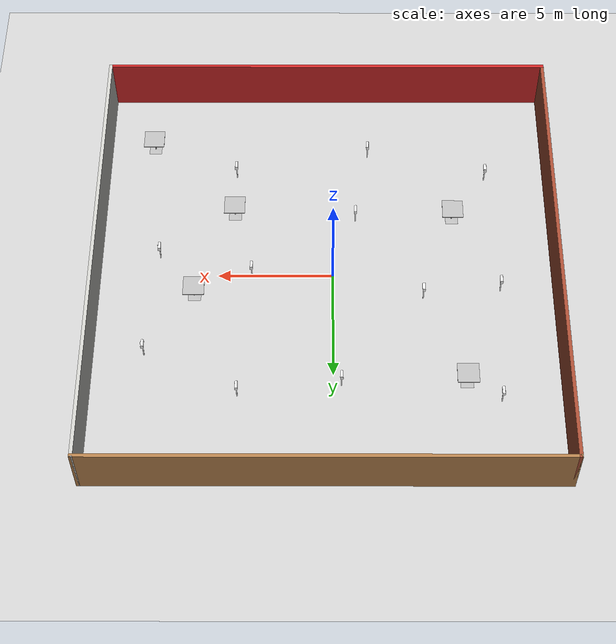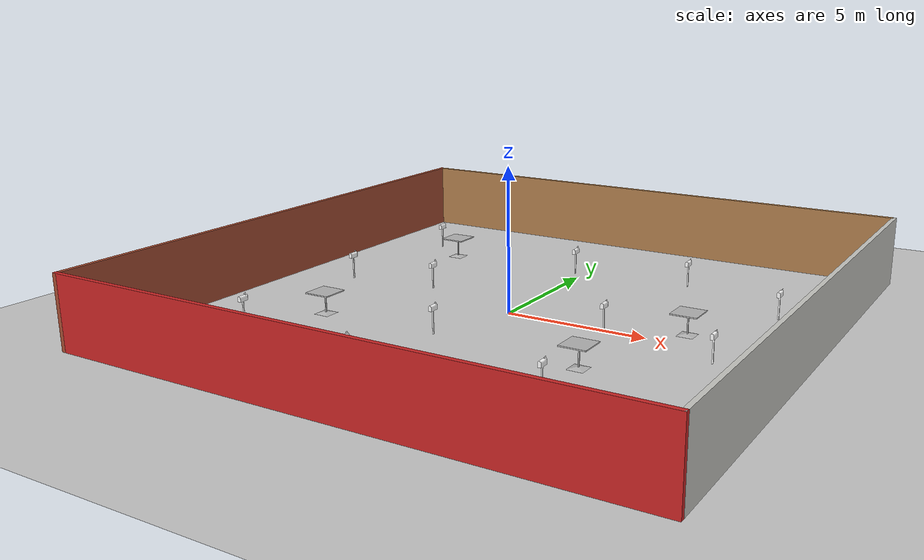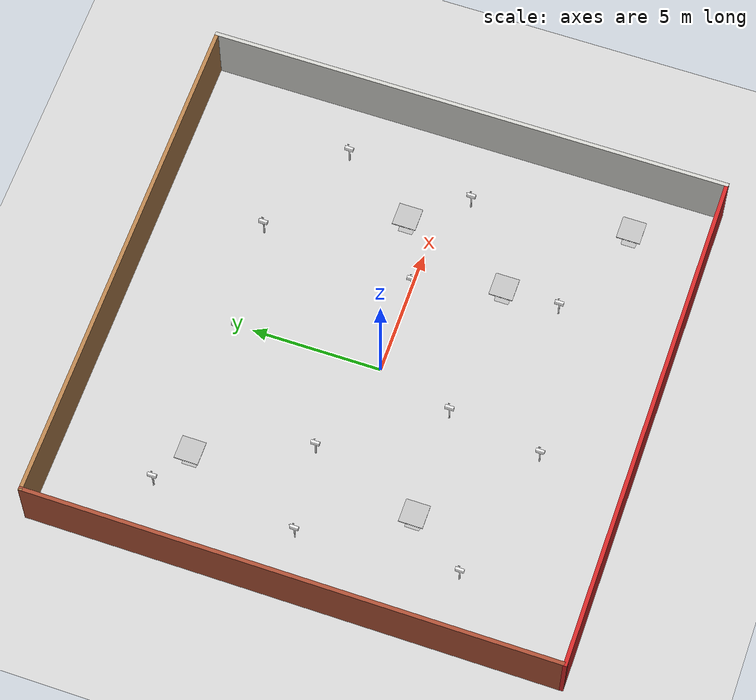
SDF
<sdf version="1.6">
 <world name="default">
  <model name="ground_plane">
   <static>1</static>
   <link name="link">
    <collision name="collision">
     <geometry><plane><normal>0 0 1</normal><size>100 100</size></plane></geometry>
     <surface><friction><ode><mu>100</mu><mu2>50</mu2></ode></friction></surface>
    </collision>
    <visual name="visual">
     <cast_shadows>0</cast_shadows>
     <geometry><plane><normal>0 0 1</normal><size>100 100</size></plane></geometry>
     <material>
      <script><uri>file://media/materials/scripts/gazebo.material</uri><name>Gazebo/Grey</name></script>
     </material>
    </visual>
   </link>
  </model>
  <gravity>0 0 -9.8</gravity>
  <magnetic_field>6e-06 2.3e-05 -4.2e-05</magnetic_field>
  <atmosphere type="adiabatic"/>
  <physics name="default_physics" default="0" type="ode">
   <max_step_size>0.001</max_step_size>
   <real_time_factor>1</real_time_factor>
   <real_time_update_rate>1000</real_time_update_rate>
  </physics>
  <scene><ambient>0.4 0.4 0.4 1</ambient><background>0.7 0.7 0.7 1</background><shadows>1</shadows></scene>
  <spherical_coordinates>
   <surface_model>EARTH_WGS84</surface_model>
   <latitude_deg>0</latitude_deg>
   <longitude_deg>0</longitude_deg>
   <elevation>0</elevation>
   <heading_deg>0</heading_deg>
  </spherical_coordinates>
  <model name="Simple_Room">
   <link name="Wall_0">
    <pose>0 10.05 0 0 -0 0</pose>
    <inertial>
     <mass>1</mass>
     <inertia><ixx>1</ixx><ixy>0</ixy><ixz>0</ixz><iyy>1</iyy><iyz>0</iyz><izz>1</izz></inertia>
    </inertial>
    <visual name="Wall_0_Visual">
     <pose>0 0 1.25 0 -0 0</pose>
     <geometry><box><size>20 0.15 2.5</size></box></geometry>
     <material>
      <script><uri>file://media/materials/scripts/gazebo.material</uri><name>Gazebo/Wood</name></script>
      <ambient>1 1 1 1</ambient>
      <diffuse>1 1 1 1</diffuse>
      <specular>0.2 0.2 0.2 1</specular>
      <emissive>0 0 0 1</emissive>
      <shader type="vertex"><normal_map>__default__</normal_map></shader>
     </material>
    </visual>
    <collision name="Wall_0_Collision">
     <pose>0 0 1.25 0 -0 0</pose>
     <geometry><box><size>20 0.15 2.5</size></box></geometry>
     <surface>
      <friction>
       <ode><mu>1</mu><mu2>1</mu2><fdir1>0 0 0</fdir1><slip1>0</slip1><slip2>0</slip2></ode>
       <torsional>
        <coefficient>1</coefficient>
        <patch_radius>0</patch_radius>
        <surface_radius>0</surface_radius>
        <use_patch_radius>1</use_patch_radius>
        <ode><slip>0</slip></ode>
       </torsional>
      </friction>
      <bounce><restitution_coefficient>0</restitution_coefficient><threshold>1e+06</threshold></bounce>
      <contact>
       <collide_without_contact>0</collide_without_contact>
       <collide_without_contact_bitmask>1</collide_without_contact_bitmask>
       <collide_bitmask>1</collide_bitmask>
       <ode>
        <soft_cfm>0</soft_cfm>
        <soft_erp>0.2</soft_erp>
        <kp>1e+13</kp>
        <kd>1</kd>
        <max_vel>0.01</max_vel>
        <min_depth>0</min_depth>
       </ode>
       <bullet>
        <split_impulse>1</split_impulse>
        <split_impulse_penetration_threshold>-0.01</split_impulse_penetration_threshold>
        <soft_cfm>0</soft_cfm>
        <soft_erp>0.2</soft_erp>
        <kp>1e+13</kp>
        <kd>1</kd>
       </bullet>
      </contact>
     </surface>
    </collision>
   </link>
   <link name="Wall_10">
    <pose>0 -10.05 0 0 -0 3.14159</pose>
    <inertial>
     <mass>1</mass>
     <inertia><ixx>1</ixx><ixy>0</ixy><ixz>0</ixz><iyy>1</iyy><iyz>0</iyz><izz>1</izz></inertia>
    </inertial>
    <visual name="Wall_10_Visual">
     <pose>0 0 1.25 0 -0 0</pose>
     <geometry><box><size>20 0.15 2.5</size></box></geometry>
     <material>
      <script><uri>file://media/materials/scripts/gazebo.material</uri><name>Gazebo/Red</name></script>
      <ambient>1 1 1 1</ambient>
      <diffuse>1 1 1 1</diffuse>
      <specular>0.2 0.2 0.2 1</specular>
      <emissive>0 0 0 1</emissive>
      <shader type="vertex"><normal_map>__default__</normal_map></shader>
     </material>
    </visual>
    <collision name="Wall_10_Collision">
     <pose>0 0 1.25 0 -0 0</pose>
     <geometry><box><size>20 0.15 2.5</size></box></geometry>
     <surface>
      <friction>
       <ode><mu>1</mu><mu2>1</mu2><fdir1>0 0 0</fdir1><slip1>0</slip1><slip2>0</slip2></ode>
       <torsional>
        <coefficient>1</coefficient>
        <patch_radius>0</patch_radius>
        <surface_radius>0</surface_radius>
        <use_patch_radius>1</use_patch_radius>
        <ode><slip>0</slip></ode>
       </torsional>
      </friction>
      <bounce><restitution_coefficient>0</restitution_coefficient><threshold>1e+06</threshold></bounce>
      <contact>
       <collide_without_contact>0</collide_without_contact>
       <collide_without_contact_bitmask>1</collide_without_contact_bitmask>
       <collide_bitmask>1</collide_bitmask>
       <ode>
        <soft_cfm>0</soft_cfm>
        <soft_erp>0.2</soft_erp>
        <kp>1e+13</kp>
        <kd>1</kd>
        <max_vel>0.01</max_vel>
        <min_depth>0</min_depth>
       </ode>
       <bullet>
        <split_impulse>1</split_impulse>
        <split_impulse_penetration_threshold>-0.01</split_impulse_penetration_threshold>
        <soft_cfm>0</soft_cfm>
        <soft_erp>0.2</soft_erp>
        <kp>1e+13</kp>
        <kd>1</kd>
       </bullet>
      </contact>
     </surface>
    </collision>
   </link>
   <link name="Wall_11">
    <pose>-9.925 0 0 0 -0 1.5708</pose>
    <visual name="Wall_11_Visual">
     <pose>0 0 1.25 0 -0 0</pose>
     <geometry><box><size>20.25 0.15 2.5</size></box></geometry>
     <material>
      <script><uri>file://media/materials/scripts/gazebo.material</uri><name>Gazebo/Bricks</name></script>
      <ambient>1 1 1 1</ambient>
      <diffuse>1 1 1 1</diffuse>
      <specular>0.2 0.2 0.2 1</specular>
      <emissive>0 0 0 1</emissive>
     </material>
    </visual>
    <collision name="Wall_11_Collision">
     <pose>0 0 1.25 0 -0 0</pose>
     <geometry><box><size>20.25 0.15 2.5</size></box></geometry>
     <surface>
      <friction>
       <ode><mu>1</mu><mu2>1</mu2><fdir1>0 0 0</fdir1><slip1>0</slip1><slip2>0</slip2></ode>
       <torsional>
        <coefficient>1</coefficient>
        <patch_radius>0</patch_radius>
        <surface_radius>0</surface_radius>
        <use_patch_radius>1</use_patch_radius>
        <ode><slip>0</slip></ode>
       </torsional>
      </friction>
      <bounce><restitution_coefficient>0</restitution_coefficient><threshold>1e+06</threshold></bounce>
      <contact>
       <collide_without_contact>0</collide_without_contact>
       <collide_without_contact_bitmask>1</collide_without_contact_bitmask>
       <collide_bitmask>1</collide_bitmask>
       <ode>
        <soft_cfm>0</soft_cfm>
        <soft_erp>0.2</soft_erp>
        <kp>1e+13</kp>
        <kd>1</kd>
        <max_vel>0.01</max_vel>
        <min_depth>0</min_depth>
       </ode>
       <bullet>
        <split_impulse>1</split_impulse>
        <split_impulse_penetration_threshold>-0.01</split_impulse_penetration_threshold>
        <soft_cfm>0</soft_cfm>
        <soft_erp>0.2</soft_erp>
        <kp>1e+13</kp>
        <kd>1</kd>
       </bullet>
      </contact>
     </surface>
    </collision>
   </link>
   <link name="Wall_9">
    <pose>9.925 0 0 0 0 -1.5708</pose>
    <inertial>
     <mass>1</mass>
     <inertia><ixx>1</ixx><ixy>0</ixy><ixz>0</ixz><iyy>1</iyy><iyz>0</iyz><izz>1</izz></inertia>
    </inertial>
    <visual name="Wall_9_Visual">
     <pose>0 0 1.25 0 -0 0</pose>
     <geometry><box><size>20.25 0.15 2.5</size></box></geometry>
     <material>
      <script><uri>file://media/materials/scripts/gazebo.material</uri><name>Gazebo/CeilingTiled</name></script>
      <ambient>1 1 1 1</ambient>
      <diffuse>1 1 1 1</diffuse>
      <specular>0.2 0.2 0.2 1</specular>
      <emissive>0 0 0 1</emissive>
      <shader type="vertex"><normal_map>__default__</normal_map></shader>
     </material>
    </visual>
    <collision name="Wall_9_Collision">
     <pose>0 0 1.25 0 -0 0</pose>
     <geometry><box><size>20.25 0.15 2.5</size></box></geometry>
     <surface>
      <friction>
       <ode><mu>1</mu><mu2>1</mu2><fdir1>0 0 0</fdir1><slip1>0</slip1><slip2>0</slip2></ode>
       <torsional>
        <coefficient>1</coefficient>
        <patch_radius>0</patch_radius>
        <surface_radius>0</surface_radius>
        <use_patch_radius>1</use_patch_radius>
        <ode><slip>0</slip></ode>
       </torsional>
      </friction>
      <bounce><restitution_coefficient>0</restitution_coefficient><threshold>1e+06</threshold></bounce>
      <contact>
       <collide_without_contact>0</collide_without_contact>
       <collide_without_contact_bitmask>1</collide_without_contact_bitmask>
       <collide_bitmask>1</collide_bitmask>
       <ode>
        <soft_cfm>0</soft_cfm>
        <soft_erp>0.2</soft_erp>
        <kp>1e+13</kp>
        <kd>1</kd>
        <max_vel>0.01</max_vel>
        <min_depth>0</min_depth>
       </ode>
       <bullet>
        <split_impulse>1</split_impulse>
        <split_impulse_penetration_threshold>-0.01</split_impulse_penetration_threshold>
        <soft_cfm>0</soft_cfm>
        <soft_erp>0.2</soft_erp>
        <kp>1e+13</kp>
        <kd>1</kd>
       </bullet>
      </contact>
     </surface>
    </collision>
   </link>
   <static>1</static>
   <pose>0.299449 0.028671 0 0 -0 0</pose>
  </model>
  <model name="Mailbox">
   <link name="link">
    <collision name="collision">
     <geometry><mesh><uri>model://mailbox/meshes/mailbox.dae</uri><scale>1 1 1</scale></mesh></geometry>
    </collision>
    <visual name="visual">
     <geometry><mesh><uri>model://mailbox/meshes/mailbox.dae</uri><scale>1 1 1</scale></mesh></geometry>
     <material>
      <script>
       <uri>model://mailbox/materials/scripts</uri>
       <uri>model://mailbox/materials/textures</uri>
       <name>Mailbox/Diffuse</name>
      </script>
     </material>
    </visual>
    <inertial>
     <inertia><ixx>1</ixx><ixy>0</ixy><ixz>0</ixz><iyy>1</iyy><iyz>0</iyz><izz>1</izz></inertia>
     <mass>1</mass>
    </inertial>
   </link>
   <pose>-7.00639 6.23877 0 -6e-06 -5e-06 0</pose>
  </model>
  <model name="Mailbox_clone">
   <link name="link">
    <collision name="collision">
     <geometry><mesh><uri>model://mailbox/meshes/mailbox.dae</uri><scale>1 1 1</scale></mesh></geometry>
    </collision>
    <visual name="visual">
     <geometry><mesh><uri>model://mailbox/meshes/mailbox.dae</uri><scale>1 1 1</scale></mesh></geometry>
     <material>
      <script>
       <uri>model://mailbox/materials/scripts</uri>
       <uri>model://mailbox/materials/textures</uri>
       <name>Mailbox/Diffuse</name>
      </script>
     </material>
    </visual>
    <inertial>
     <inertia><ixx>1</ixx><ixy>0</ixy><ixz>0</ixz><iyy>1</iyy><iyz>0</iyz><izz>1</izz></inertia>
     <mass>1</mass>
    </inertial>
   </link>
   <pose>-7.2569 0.735645 0 4e-06 -3e-06 0</pose>
  </model>
  <model name="Mailbox_clone_0">
   <link name="link">
    <collision name="collision">
     <geometry><mesh><uri>model://mailbox/meshes/mailbox.dae</uri><scale>1 1 1</scale></mesh></geometry>
    </collision>
    <visual name="visual">
     <geometry><mesh><uri>model://mailbox/meshes/mailbox.dae</uri><scale>1 1 1</scale></mesh></geometry>
     <material>
      <script>
       <uri>model://mailbox/materials/scripts</uri>
       <uri>model://mailbox/materials/textures</uri>
       <name>Mailbox/Diffuse</name>
      </script>
     </material>
    </visual>
    <inertial>
     <inertia><ixx>1</ixx><ixy>0</ixy><ixz>0</ixz><iyy>1</iyy><iyz>0</iyz><izz>1</izz></inertia>
     <mass>1</mass>
    </inertial>
   </link>
   <pose>-6.87904 -5.34155 -1e-05 2e-06 -5e-06 -0</pose>
  </model>
  <model name="Mailbox_clone_1">
   <link name="link">
    <collision name="collision">
     <geometry><mesh><uri>model://mailbox/meshes/mailbox.dae</uri><scale>1 1 1</scale></mesh></geometry>
    </collision>
    <visual name="visual">
     <geometry><mesh><uri>model://mailbox/meshes/mailbox.dae</uri><scale>1 1 1</scale></mesh></geometry>
     <material>
      <script>
       <uri>model://mailbox/materials/scripts</uri>
       <uri>model://mailbox/materials/textures</uri>
       <name>Mailbox/Diffuse</name>
      </script>
     </material>
    </visual>
    <inertial>
     <inertia><ixx>1</ixx><ixy>0</ixy><ixz>0</ixz><iyy>1</iyy><iyz>0</iyz><izz>1</izz></inertia>
     <mass>1</mass>
    </inertial>
   </link>
   <pose>-1.57855 -6.63325 0 -7e-06 1e-06 -0</pose>
  </model>
  <model name="Mailbox_clone_2">
   <link name="link">
    <collision name="collision">
     <geometry><mesh><uri>model://mailbox/meshes/mailbox.dae</uri><scale>1 1 1</scale></mesh></geometry>
    </collision>
    <visual name="visual">
     <geometry><mesh><uri>model://mailbox/meshes/mailbox.dae</uri><scale>1 1 1</scale></mesh></geometry>
     <material>
      <script>
       <uri>model://mailbox/materials/scripts</uri>
       <uri>model://mailbox/materials/textures</uri>
       <name>Mailbox/Diffuse</name>
      </script>
     </material>
    </visual>
    <inertial>
     <inertia><ixx>1</ixx><ixy>0</ixy><ixz>0</ixz><iyy>1</iyy><iyz>0</iyz><izz>1</izz></inertia>
     <mass>1</mass>
    </inertial>
   </link>
   <pose>4.35761 -5.47993 0 5e-06 -9e-06 0</pose>
  </model>
  <model name="Mailbox_clone_3">
   <link name="link">
    <collision name="collision">
     <geometry><mesh><uri>model://mailbox/meshes/mailbox.dae</uri><scale>1 1 1</scale></mesh></geometry>
    </collision>
    <visual name="visual">
     <geometry><mesh><uri>model://mailbox/meshes/mailbox.dae</uri><scale>1 1 1</scale></mesh></geometry>
     <material>
      <script>
       <uri>model://mailbox/materials/scripts</uri>
       <uri>model://mailbox/materials/textures</uri>
       <name>Mailbox/Diffuse</name>
      </script>
     </material>
    </visual>
    <inertial>
     <inertia><ixx>1</ixx><ixy>0</ixy><ixz>0</ixz><iyy>1</iyy><iyz>0</iyz><izz>1</izz></inertia>
     <mass>1</mass>
    </inertial>
   </link>
   <pose>7.58056 -1 -1e-05 -8e-06 2e-06 -0</pose>
  </model>
  <model name="Mailbox_clone_4">
   <link name="link">
    <collision name="collision">
     <geometry><mesh><uri>model://mailbox/meshes/mailbox.dae</uri><scale>1 1 1</scale></mesh></geometry>
    </collision>
    <visual name="visual">
     <geometry><mesh><uri>model://mailbox/meshes/mailbox.dae</uri><scale>1 1 1</scale></mesh></geometry>
     <material>
      <script>
       <uri>model://mailbox/materials/scripts</uri>
       <uri>model://mailbox/materials/textures</uri>
       <name>Mailbox/Diffuse</name>
      </script>
     </material>
    </visual>
    <inertial>
     <inertia><ixx>1</ixx><ixy>0</ixy><ixz>0</ixz><iyy>1</iyy><iyz>0</iyz><izz>1</izz></inertia>
     <mass>1</mass>
    </inertial>
   </link>
   <pose>8 4 0 -4e-06 -7e-06 0</pose>
  </model>
  <model name="Mailbox_clone_5">
   <link name="link">
    <collision name="collision">
     <geometry><mesh><uri>model://mailbox/meshes/mailbox.dae</uri><scale>1 1 1</scale></mesh></geometry>
    </collision>
    <visual name="visual">
     <geometry><mesh><uri>model://mailbox/meshes/mailbox.dae</uri><scale>1 1 1</scale></mesh></geometry>
     <material>
      <script>
       <uri>model://mailbox/materials/scripts</uri>
       <uri>model://mailbox/materials/textures</uri>
       <name>Mailbox/Diffuse</name>
      </script>
     </material>
    </visual>
    <inertial>
     <inertia><ixx>1</ixx><ixy>0</ixy><ixz>0</ixz><iyy>1</iyy><iyz>0</iyz><izz>1</izz></inertia>
     <mass>1</mass>
    </inertial>
   </link>
   <pose>-0.353165 5.48904 -9e-06 4e-06 -8e-06 0</pose>
  </model>
  <model name="Mailbox_clone_6">
   <link name="link">
    <collision name="collision">
     <geometry><mesh><uri>model://mailbox/meshes/mailbox.dae</uri><scale>1 1 1</scale></mesh></geometry>
    </collision>
    <visual name="visual">
     <geometry><mesh><uri>model://mailbox/meshes/mailbox.dae</uri><scale>1 1 1</scale></mesh></geometry>
     <material>
      <script>
       <uri>model://mailbox/materials/scripts</uri>
       <uri>model://mailbox/materials/textures</uri>
       <name>Mailbox/Diffuse</name>
      </script>
     </material>
    </visual>
    <inertial>
     <inertia><ixx>1</ixx><ixy>0</ixy><ixz>0</ixz><iyy>1</iyy><iyz>0</iyz><izz>1</izz></inertia>
     <mass>1</mass>
    </inertial>
   </link>
   <pose>4 6 -1e-05 6e-06 -5e-06 0</pose>
  </model>
  <model name="Mailbox_clone_7">
   <link name="link">
    <collision name="collision">
     <geometry><mesh><uri>model://mailbox/meshes/mailbox.dae</uri><scale>1 1 1</scale></mesh></geometry>
    </collision>
    <visual name="visual">
     <geometry><mesh><uri>model://mailbox/meshes/mailbox.dae</uri><scale>1 1 1</scale></mesh></geometry>
     <material>
      <script>
       <uri>model://mailbox/materials/scripts</uri>
       <uri>model://mailbox/materials/textures</uri>
       <name>Mailbox/Diffuse</name>
      </script>
     </material>
    </visual>
    <inertial>
     <inertia><ixx>1</ixx><ixy>0</ixy><ixz>0</ixz><iyy>1</iyy><iyz>0</iyz><izz>1</izz></inertia>
     <mass>1</mass>
    </inertial>
   </link>
   <pose>-3.90522 1.13101 0 -3e-06 -2e-06 0</pose>
  </model>
  <model name="Mailbox_clone_8">
   <link name="link">
    <collision name="collision">
     <geometry><mesh><uri>model://mailbox/meshes/mailbox.dae</uri><scale>1 1 1</scale></mesh></geometry>
    </collision>
    <visual name="visual">
     <geometry><mesh><uri>model://mailbox/meshes/mailbox.dae</uri><scale>1 1 1</scale></mesh></geometry>
     <material>
      <script>
       <uri>model://mailbox/materials/scripts</uri>
       <uri>model://mailbox/materials/textures</uri>
       <name>Mailbox/Diffuse</name>
      </script>
     </material>
    </visual>
    <inertial>
     <inertia><ixx>1</ixx><ixy>0</ixy><ixz>0</ixz><iyy>1</iyy><iyz>0</iyz><izz>1</izz></inertia>
     <mass>1</mass>
    </inertial>
   </link>
   <pose>3.5355 0 0 -1e-06 -2e-06 0</pose>
  </model>
  <model name="Mailbox_clone_9">
   <link name="link">
    <collision name="collision">
     <geometry><mesh><uri>model://mailbox/meshes/mailbox.dae</uri><scale>1 1 1</scale></mesh></geometry>
    </collision>
    <visual name="visual">
     <geometry><mesh><uri>model://mailbox/meshes/mailbox.dae</uri><scale>1 1 1</scale></mesh></geometry>
     <material>
      <script>
       <uri>model://mailbox/materials/scripts</uri>
       <uri>model://mailbox/materials/textures</uri>
       <name>Mailbox/Diffuse</name>
      </script>
     </material>
    </visual>
    <inertial>
     <inertia><ixx>1</ixx><ixy>0</ixy><ixz>0</ixz><iyy>1</iyy><iyz>0</iyz><izz>1</izz></inertia>
     <mass>1</mass>
    </inertial>
   </link>
   <pose>-1 -3 -9e-06 -1.3e-05 0 0</pose>
  </model>
  <model name="cafe_table_0">
   <static>1</static>
   <link name="link">
    <collision name="surface">
     <pose>0 0 0.755 0 -0 0</pose>
     <geometry><box><size>0.913 0.913 0.04</size></box></geometry>
    </collision>
    <collision name="column">
     <pose>0 0 0.37 0 -0 0</pose>
     <geometry><box><size>0.042 0.042 0.74</size></box></geometry>
    </collision>
    <collision name="base">
     <pose>0 0 0.02 0 -0 0</pose>
     <geometry><box><size>0.56 0.56 0.04</size></box></geometry>
    </collision>
    <visual name="visual">
     <geometry><mesh><uri>model://cafe_table/meshes/cafe_table.dae</uri><scale>1 1 1</scale></mesh></geometry>
    </visual>
   </link>
   <pose>-5.60252 5.32225 0 0 -0 0</pose>
  </model>
  <model name="cafe_table_0_clone">
   <static>1</static>
   <link name="link">
    <collision name="surface">
     <pose>0 0 0.755 0 -0 0</pose>
     <geometry><box><size>0.913 0.913 0.04</size></box></geometry>
    </collision>
    <collision name="column">
     <pose>0 0 0.37 0 -0 0</pose>
     <geometry><box><size>0.042 0.042 0.74</size></box></geometry>
    </collision>
    <collision name="base">
     <pose>0 0 0.02 0 -0 0</pose>
     <geometry><box><size>0.56 0.56 0.04</size></box></geometry>
    </collision>
    <visual name="visual">
     <geometry><mesh><uri>model://cafe_table/meshes/cafe_table.dae</uri><scale>1 1 1</scale></mesh></geometry>
    </visual>
   </link>
   <pose>-5.31836 -3.11555 0 0 -0 0</pose>
  </model>
  <model name="cafe_table_0_clone_0">
   <static>1</static>
   <link name="link">
    <collision name="surface">
     <pose>0 0 0.755 0 -0 0</pose>
     <geometry><box><size>0.913 0.913 0.04</size></box></geometry>
    </collision>
    <collision name="column">
     <pose>0 0 0.37 0 -0 0</pose>
     <geometry><box><size>0.042 0.042 0.74</size></box></geometry>
    </collision>
    <collision name="base">
     <pose>0 0 0.02 0 -0 0</pose>
     <geometry><box><size>0.56 0.56 0.04</size></box></geometry>
    </collision>
    <visual name="visual">
     <geometry><mesh><uri>model://cafe_table/meshes/cafe_table.dae</uri><scale>1 1 1</scale></mesh></geometry>
    </visual>
   </link>
   <pose>4.37291 -3.33284 0 0 -0 0</pose>
  </model>
  <model name="cafe_table_0_clone_1">
   <static>1</static>
   <link name="link">
    <collision name="surface">
     <pose>0 0 0.755 0 -0 0</pose>
     <geometry><box><size>0.913 0.913 0.04</size></box></geometry>
    </collision>
    <collision name="column">
     <pose>0 0 0.37 0 -0 0</pose>
     <geometry><box><size>0.042 0.042 0.74</size></box></geometry>
    </collision>
    <collision name="base">
     <pose>0 0 0.02 0 -0 0</pose>
     <geometry><box><size>0.56 0.56 0.04</size></box></geometry>
    </collision>
    <visual name="visual">
     <geometry><mesh><uri>model://cafe_table/meshes/cafe_table.dae</uri><scale>1 1 1</scale></mesh></geometry>
    </visual>
   </link>
   <pose>6 1 0 0 -0 0</pose>
  </model>
  <model name="cafe_table_0_clone_2">
   <static>1</static>
   <link name="link">
    <collision name="surface">
     <pose>0 0 0.755 0 -0 0</pose>
     <geometry><box><size>0.913 0.913 0.04</size></box></geometry>
    </collision>
    <collision name="column">
     <pose>0 0 0.37 0 -0 0</pose>
     <geometry><box><size>0.042 0.042 0.74</size></box></geometry>
    </collision>
    <collision name="base">
     <pose>0 0 0.02 0 -0 0</pose>
     <geometry><box><size>0.56 0.56 0.04</size></box></geometry>
    </collision>
    <visual name="visual">
     <geometry><mesh><uri>model://cafe_table/meshes/cafe_table.dae</uri><scale>1 1 1</scale></mesh></geometry>
    </visual>
   </link>
   <pose>8.17972 -7.09229 0 0 -0 0</pose>
  </model>
  <light name="user_point_light_0" type="point">
   <pose>0.251503 -0.050667 1 0 -0 0</pose>
   <diffuse>0.5 0.5 0.5 1</diffuse>
   <specular>0.1 0.1 0.1 1</specular>
   <attenuation>
    <range>20</range>
    <constant>0.5</constant>
    <linear>0.01</linear>
    <quadratic>0.001</quadratic>
   </attenuation>
   <cast_shadows>0</cast_shadows>
   <direction>0 0 -1</direction>
  </light>
  <light name="user_point_light_0_clone" type="point">
   <pose>4.82839 -5.74012 5.66303 0 -0 0</pose>
   <diffuse>0.5 0.5 0.5 1</diffuse>
   <specular>0.1 0.1 0.1 1</specular>
   <direction>0 0 -1</direction>
   <attenuation>
    <range>20</range>
    <constant>0.5</constant>
    <linear>0.01</linear>
    <quadratic>0.001</quadratic>
   </attenuation>
  </light>
  <light name="user_point_light_0_clone_0" type="point">
   <pose>-5.17709 -5.89567 5.66303 0 -0 0</pose>
   <diffuse>0.5 0.5 0.5 1</diffuse>
   <specular>0.1 0.1 0.1 1</specular>
   <direction>0 0 -1</direction>
   <attenuation>
    <range>20</range>
    <constant>0.5</constant>
    <linear>0.01</linear>
    <quadratic>0.001</quadratic>
   </attenuation>
  </light>
  <light name="user_point_light_0_clone_1" type="point">
   <pose>-5.24776 4.43432 5.66303 0 -0 0</pose>
   <diffuse>0.5 0.5 0.5 1</diffuse>
   <specular>0.1 0.1 0.1 1</specular>
   <direction>0 0 -1</direction>
   <attenuation>
    <range>20</range>
    <constant>0.5</constant>
    <linear>0.01</linear>
    <quadratic>0.001</quadratic>
   </attenuation>
  </light>
 </world>
</sdf>
